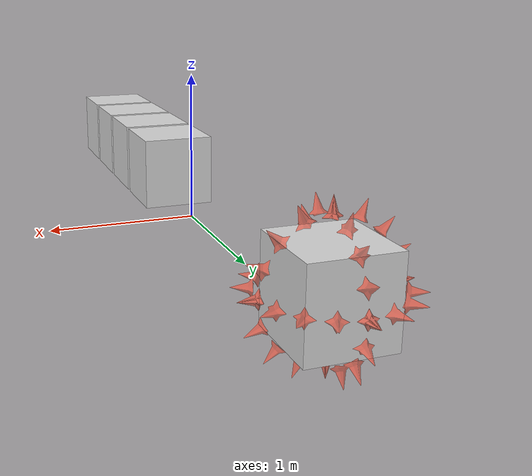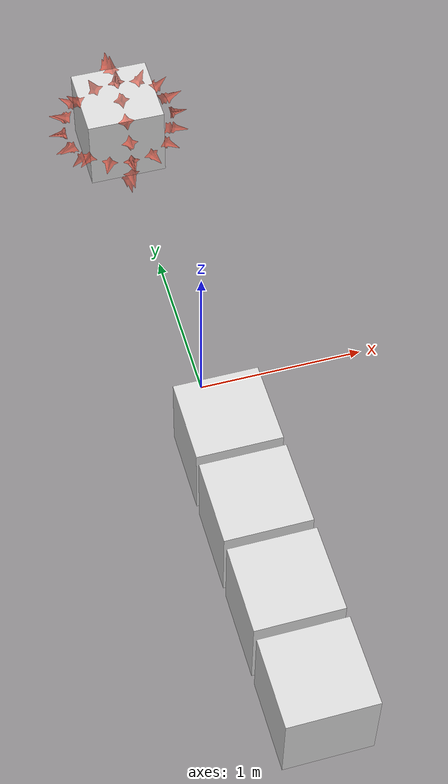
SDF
<?xml version="1.0" ?>
<sdf version="1.6">
  <model name="trap_cont_4_r_4">
    <static>false</static>

    <include>
      <name>normal_cue_0</name>
      <uri>model://vis_cue_normal</uri>
      <pose>0 -2.20 0.25 0 0 0</pose>
    </include>
    <include>
      <name>normal_cue_1</name>
      <uri>model://vis_cue_normal</uri>
      <pose>0 -1.65 0.25 0 0 0</pose>
    </include>
    <include>
      <name>normal_cue_2</name>
      <uri>model://vis_cue_normal</uri>
      <pose>0 -1.1 0.25 0 0 0</pose>
    </include>
    <include>
      <name>op_r</name>
      <uri>model://vis_cue_normal</uri>
      <pose>0 -0.55 0.25 0 0 0</pose>
    </include>
    <include>
      <name>op_l</name>
      <uri>model://vis_cue_repel</uri>
      <pose>0 2.05 0.25 0 0 0</pose>
    </include>

  </model>
</sdf>

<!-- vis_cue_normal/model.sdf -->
<sdf version="1.6">
  <model name="vis_cue_normal">
    <static>false</static>
    <pose>0 0 0.25 0 0 0</pose>
    <link name='vis_cue_normal'>
      <inertial>
        <mass>1</mass>
        <inertia>
          <ixx>0.166667</ixx>
          <ixy>0</ixy>
          <ixz>0</ixz>
          <iyy>0.166667</iyy>
          <iyz>0</iyz>
          <izz>0.166667</izz>
        </inertia>
      </inertial>
      <collision name='collision'>
        <geometry>
          <box>
            <size>0.5 0.5 0.5</size>
          </box>
        </geometry>
        <max_contacts>10</max_contacts>
        <surface>
          <contact>
            <ode/>
          </contact>
          <bounce/>
          <friction>
            <torsional>
              <ode/>
            </torsional>
            <ode/>
          </friction>
        </surface>
      </collision>
      <visual name='box_visual'>
        <geometry>
          <box>
            <size>0.5 0.5 0.5</size>
          </box>
        </geometry>
        <material>
          <ambient>0.85 0.85 0.85 1</ambient>
          <diffuse>0.85 0.85 0.85 1</diffuse>
          <specular>0.15 0.15 0.15 1</specular>
          <emissive>0 0 0 0</emissive>
        </material>
      </visual>
      <self_collide>0</self_collide>
      <kinematic>0</kinematic>
    </link>
  </model>
</sdf>

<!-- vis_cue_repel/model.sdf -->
<sdf version="1.6">
  <model name="vis_cue_repel">
    <static>false</static>
    <pose>0 0 0.25 0 0 0</pose>
    <link name='vis_cue_repel'>
      <inertial>
        <mass>1</mass>
        <inertia>
          <ixx>0.166667</ixx>
          <ixy>0</ixy>
          <ixz>0</ixz>
          <iyy>0.166667</iyy>
          <iyz>0</iyz>
          <izz>0.166667</izz>
        </inertia>
      </inertial>
      <collision name='collision'>
        <geometry>
          <box>
            <size>0.5 0.5 0.5</size>
          </box>
        </geometry>
        <max_contacts>10</max_contacts>
        <surface>
          <contact>
            <ode/>
          </contact>
          <bounce/>
          <friction>
            <torsional>
              <ode/>
            </torsional>
            <ode/>
          </friction>
        </surface>
      </collision>
      <visual name='box_visual'>
        <geometry>
          <box>
            <size>0.5 0.5 0.5</size>
          </box>
        </geometry>
        <material>
          <ambient>0.85 0.85 0.85 1</ambient>
          <diffuse>0.85 0.85 0.85 1</diffuse>
          <specular>0.15 0.15 0.15 1</specular>
          <emissive>0 0 0 0</emissive>
        </material>
      </visual>
      <visual name='cue_visual_1'>
        <pose>0 0 0 1.5708 0 1.5708</pose>
        <geometry>
          <mesh>
            <uri>model://vis_cue_repel/meshes/repelling_cue.stl</uri>
            <scale>0.36 0.36 0.36</scale>
          </mesh>
        </geometry>
        <material>
          <ambient>1 0.3 0.2 0.6</ambient>
          <diffuse>1 0.3 0.2 0.6</diffuse>
          <specular>1 0.3 0.2 0.7</specular>
          <emissive>0.5 0 0 0.1</emissive>
        </material>
      </visual>
      <visual name='cue_visual_2'>
        <pose>0 0 0 1.5708 0 0</pose>
        <geometry>
          <mesh>
            <uri>model://vis_cue_repel/meshes/repelling_cue.stl</uri>
            <scale>0.36 0.36 0.36</scale>
          </mesh>
        </geometry>
        <material>
          <ambient>1 0.3 0.2 0.6</ambient>
          <diffuse>1 0.3 0.2 0.6</diffuse>
          <specular>1 0.3 0.2 0.7</specular>
          <emissive>0.5 0 0 0.1</emissive>
        </material>
      </visual>
      <visual name='cue_visual_3'>
        <pose>0 0 0 0 0 0</pose>
        <geometry>
          <mesh>
            <uri>model://vis_cue_repel/meshes/repelling_cue.stl</uri>
            <scale>0.36 0.36 0.36</scale>
          </mesh>
        </geometry>
        <material>
          <ambient>1 0.3 0.2 0.6</ambient>
          <diffuse>1 0.3 0.2 0.6</diffuse>
          <specular>1 0.3 0.2 0.7</specular>
          <emissive>0.5 0 0 0.1</emissive>
        </material>
      </visual>
      <self_collide>0</self_collide>
      <kinematic>0</kinematic>
    </link>
  </model>
</sdf>
